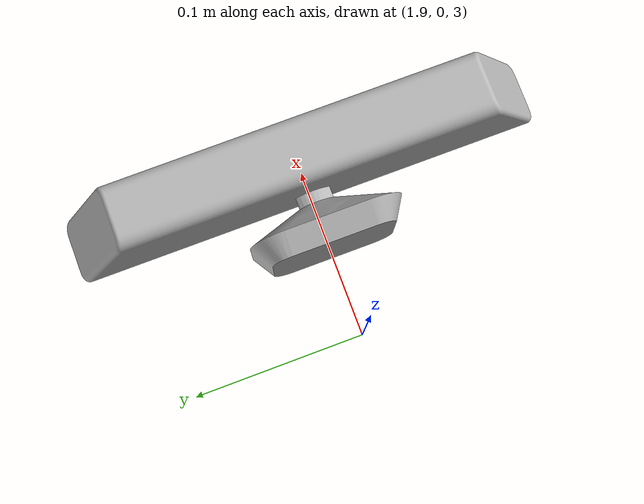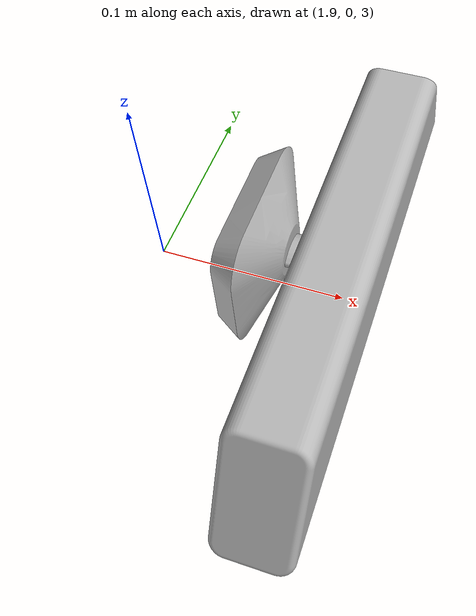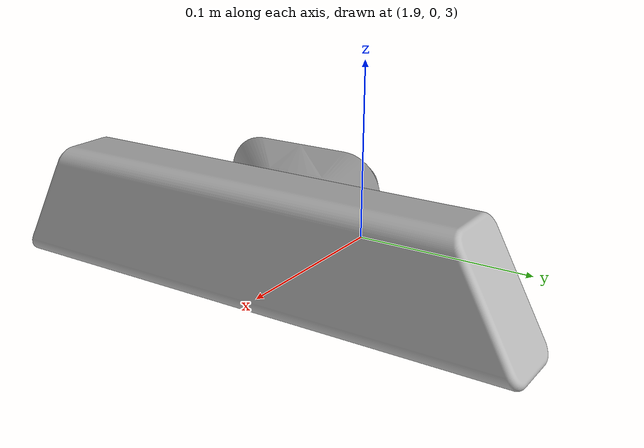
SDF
<sdf version="1.6">
 <world name="default">
  <model name="ground_plane">
   <static>1</static>
   <link name="link">
    <collision name="collision">
     <geometry><plane><normal>0 0 1</normal><size>100 100</size></plane></geometry>
     <surface><friction><ode><mu>100</mu><mu2>50</mu2></ode></friction></surface>
    </collision>
   </link>
  </model>
  <light name="sun" type="directional">
   <pose>0 0 10 0 -0 0</pose>
   <diffuse>0.8 0.8 0.8 1</diffuse>
   <specular>0.2 0.2 0.2 1</specular>
   <attenuation>
    <range>1000</range>
    <constant>0.9</constant>
    <linear>0.01</linear>
    <quadratic>0.001</quadratic>
   </attenuation>
   <direction>-0.5 0.1 -0.9</direction>
  </light>
  <plugin name="ros_interface_plugin" filename="librotors_gazebo_ros_interface_plugin.so"/>
  <spherical_coordinates>
   <surface_model>EARTH_WGS84</surface_model>
   <latitude_deg>47.3667</latitude_deg>
   <longitude_deg>8.55</longitude_deg>
   <elevation>500</elevation>
   <heading_deg>0</heading_deg>
  </spherical_coordinates>
  <physics name="default_physics" default="0" type="ode">
   <ode>
    <solver>
     <type>quick</type>
     <iters>1000</iters>
     <sor>1.3</sor>
     <use_dynamic_moi_rescaling>0</use_dynamic_moi_rescaling>
    </solver>
    <constraints>
     <cfm>0</cfm>
     <erp>0.2</erp>
     <contact_max_correcting_vel>100</contact_max_correcting_vel>
     <contact_surface_layer>0.001</contact_surface_layer>
    </constraints>
   </ode>
   <max_step_size>0.01</max_step_size>
   <real_time_factor>1</real_time_factor>
   <real_time_update_rate>100</real_time_update_rate>
  </physics>
  <scene><shadows>0</shadows><ambient>0.4 0.4 0.4 1</ambient><background>0.7 0.7 0.7 1</background></scene>
  <gravity>0 0 -9.8</gravity>
  <magnetic_field>6e-06 2.3e-05 -4.2e-05</magnetic_field>
  <atmosphere type="adiabatic"/>
  <model name="kinect_ros_3">
   <pose>2 0 3 0 1.57 0</pose>
   <link name="link">
    <inertial><mass>0.1</mass></inertial>
    <collision name="collision"><geometry><box><size>0.073 0.276 0.072</size></box></geometry></collision>
    <visual name="visual"><geometry><mesh><uri>model://kinect/meshes/kinect.dae</uri></mesh></geometry></visual>
    <sensor name="camera" type="depth">
     <update_rate>20</update_rate>
     <camera name="__default__">
      <horizontal_fov>1.087</horizontal_fov>
      <image><width>680</width><height>680</height><format>R8G8B8</format></image>
      <clip><near>0.01</near><far>10</far></clip>
     </camera>
     <plugin name="camera_plugin" filename="libgazebo_ros_openni_kinect.so">
      <baseline>0.2</baseline>
      <alwaysOn>1</alwaysOn>
      <updateRate>0.0</updateRate>
      <cameraName>camera_ir_top</cameraName>
      <imageTopicName>camera/color/image_raw</imageTopicName>
      <cameraInfoTopicName>camera/color/camera_info</cameraInfoTopicName>
      <depthImageTopicName>camera/depth/image_raw</depthImageTopicName>
      <depthImageCameraInfoTopicName>camera/depth/camera_info</depthImageCameraInfoTopicName>
      <pointCloudTopicName>camera/depth/points</pointCloudTopicName>
      <frameName>camera_link</frameName>
      <pointCloudCutoff>0.01</pointCloudCutoff>
      <pointCloudCutoffMax>10.0</pointCloudCutoffMax>
      <distortionK1>0</distortionK1>
      <distortionK2>0</distortionK2>
      <distortionK3>0</distortionK3>
      <distortionT1>0</distortionT1>
      <distortionT2>0</distortionT2>
      <CxPrime>0</CxPrime>
      <Cx>0</Cx>
      <Cy>0</Cy>
      <focalLength>0</focalLength>
      <hackBaseline>0</hackBaseline>
     </plugin>
    </sensor>
   </link>
   <static>1</static>
  </model>
 </world>
</sdf>
